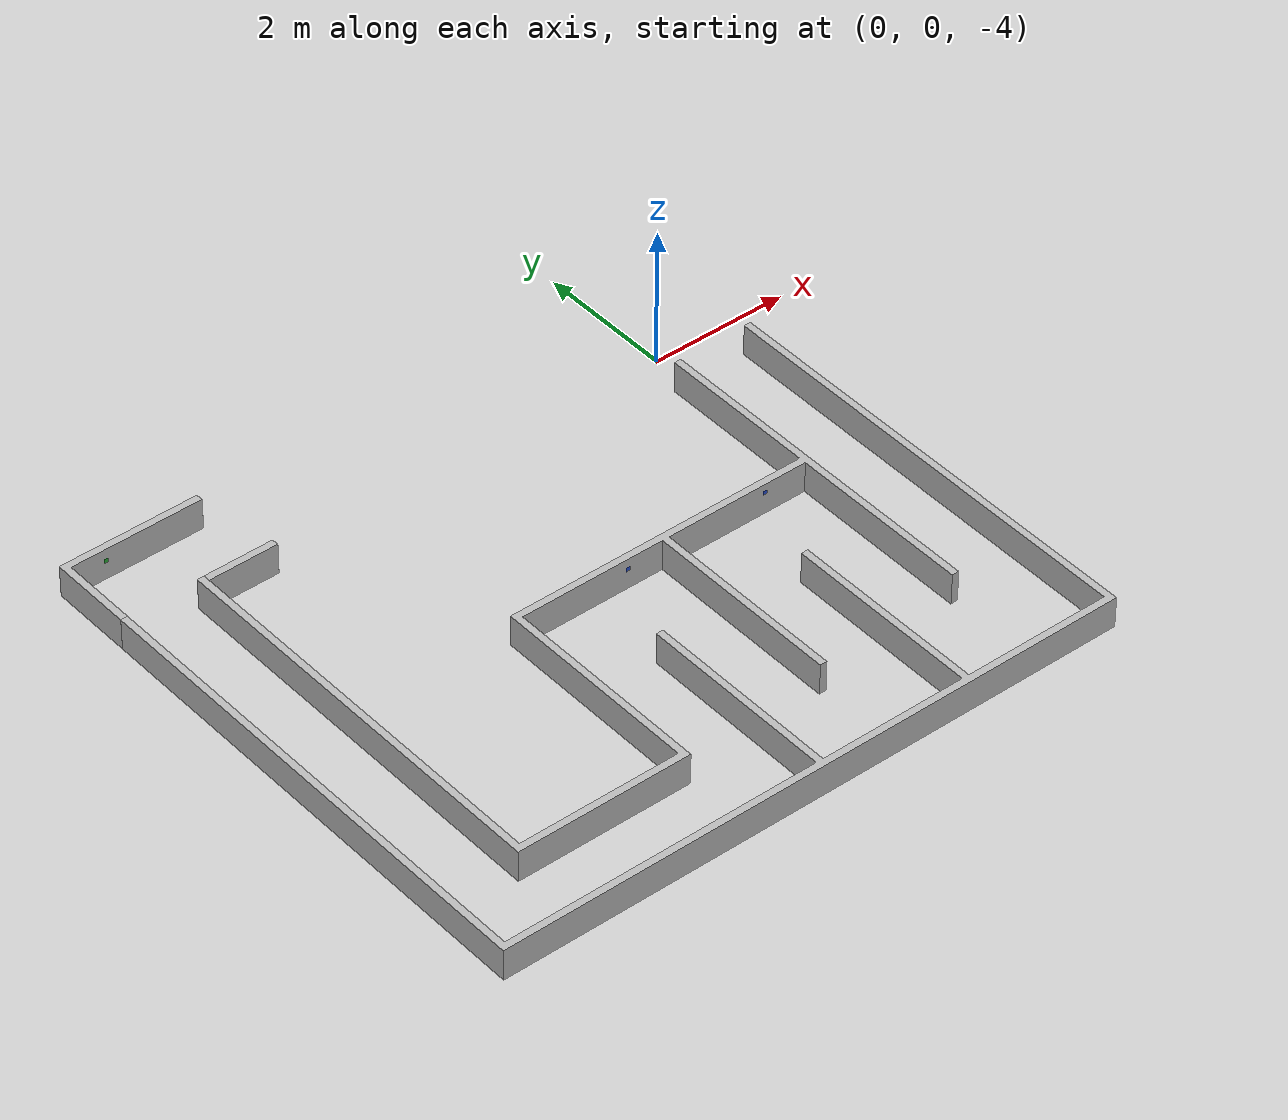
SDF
<?xml version="1.0"?>

<sdf version="1.6">
  <world name="default">

    <scene>
      <sky>
        <clouds>
          <speed>12</speed>
        </clouds>
      </sky>
    </scene>

    <include>
      <uri>model://ground_plane</uri>
    </include>

    <include>
      <uri>model://sun</uri>
    </include>

    <gui fullscreen='0'>
      <camera name='user_camera'>
        <pose frame=''>0.319654 -0.235002 9.29441 0 1.5138 0.009599</pose>
        <view_controller>orbit</view_controller>
        <projection_type>perspective</projection_type>
      </camera>
    </gui>

    <physics type="ode">
      <real_time_update_rate>1000.0</real_time_update_rate>
      <max_step_size>0.001</max_step_size>
      <real_time_factor>1</real_time_factor>
      <ode>
        <solver>
          <type>quick</type>
          <iters>150</iters>
          <precon_iters>0</precon_iters>
          <sor>1.400000</sor>
          <use_dynamic_moi_rescaling>1</use_dynamic_moi_rescaling>
        </solver>
        <constraints>
          <cfm>0.00001</cfm>
          <erp>0.2</erp>
          <contact_max_correcting_vel>2000.000000</contact_max_correcting_vel>
          <contact_surface_layer>0.01000</contact_surface_layer>
        </constraints>
      </ode>
    </physics>

  <model name='worldv2'>
    <pose>0.1 -5 0 0 0 1.57</pose>
    <link name='base_link'>
      <inertial>
        <pose>0.467407 4.2841 -3.26331 0 -0 0</pose>
        <mass>2497.5</mass>
        <inertia>
          <ixx>25124</ixx>
          <ixy>-3259.73</ixy>
          <ixz>-0.00571683</ixz>
          <iyy>12124.3</iyy>
          <iyz>-0.00487736</iyz>
          <izz>37164</izz>
        </inertia>
      </inertial>
      <collision name='base_link_collision'>
        <pose>0 0 0 0 -0 0</pose>
        <geometry>
          <mesh>
            <scale>1 1 1</scale>
            <uri>model://myrobot/meshes/worldv2.STL</uri>
          </mesh>
        </geometry>
      </collision>
      <collision name='base_link_fixed_joint_lump__cp10_r_collision_1'>
        <pose>-2.0208 8.4975 -3.1826 0 -0 0</pose>
        <geometry>
          <mesh>
            <scale>1 1 1</scale>
            <uri>model://myrobot/meshes/cp1__.STL</uri>
          </mesh>
        </geometry>
      </collision>
      <collision name='base_link_fixed_joint_lump__cp11_g_collision_2'>
        <pose>5.5761 7.9975 -3.2136 0 -0 1.5708</pose>
        <geometry>
          <mesh>
            <scale>1 1 1</scale>
            <uri>model://myrobot/meshes/cp1__.STL</uri>
          </mesh>
        </geometry>
      </collision>
      <collision name='base_link_fixed_joint_lump__cp1_r_collision_3'>
        <pose>-2.4269 0.077522 -3.1683 0 -0 1.5708</pose>
        <geometry>
          <mesh>
            <scale>1 1 1</scale>
            <uri>model://myrobot/meshes/cp1__.STL</uri>
          </mesh>
        </geometry>
      </collision>
      <collision name='base_link_fixed_joint_lump__cp2_r_collision_4'>
        <pose>-1.8719 1.6975 -3.1683 0 -0 0</pose>
        <geometry>
          <mesh>
            <scale>1 1 1</scale>
            <uri>model://myrobot/meshes/cp1__.STL</uri>
          </mesh>
        </geometry>
      </collision>
      <collision name='base_link_fixed_joint_lump__cp3_b_collision_5'>
        <pose>1.5761 1.3175 -3.1683 0 -0 1.5708</pose>
        <geometry>
          <mesh>
            <scale>1 1 1</scale>
            <uri>model://myrobot/meshes/cp1__.STL</uri>
          </mesh>
        </geometry>
      </collision>
      <collision name='base_link_fixed_joint_lump__cp4_b_collision_6'>
        <pose>1.1781 2.7975 -3.1933 0 -0 0</pose>
        <geometry>
          <mesh>
            <scale>1 1 1</scale>
            <uri>model://myrobot/meshes/cp1__.STL</uri>
          </mesh>
        </geometry>
      </collision>
      <collision name='base_link_fixed_joint_lump__cp5_r_collision_7'>
        <pose>-2.4269 2.2525 -3.1933 0 -0 1.5708</pose>
        <geometry>
          <mesh>
            <scale>1 1 1</scale>
            <uri>model://myrobot/meshes/cp1__.STL</uri>
          </mesh>
        </geometry>
      </collision>
      <collision name='base_link_fixed_joint_lump__cp6_r_collision_8'>
        <pose>-1.9969 3.8975 -3.1683 0 -0 0</pose>
        <geometry>
          <mesh>
            <scale>1 1 1</scale>
            <uri>model://myrobot/meshes/cp1__.STL</uri>
          </mesh>
        </geometry>
      </collision>
      <collision name='base_link_fixed_joint_lump__cp7_b_collision_9'>
        <pose>1.5761 3.4175 -3.1933 0 -0 1.5708</pose>
        <geometry>
          <mesh>
            <scale>1 1 1</scale>
            <uri>model://myrobot/meshes/cp1__.STL</uri>
          </mesh>
        </geometry>
      </collision>
      <collision name='base_link_fixed_joint_lump__cp8_b_collision_10'>
        <pose>1.1281 4.9965 -3.1683 0 -0 0</pose>
        <geometry>
          <mesh>
            <scale>1 1 1</scale>
            <uri>model://myrobot/meshes/cp1__.STL</uri>
          </mesh>
        </geometry>
      </collision>
      <collision name='base_link_fixed_joint_lump__cp9_r_collision_11'>
        <pose>-2.4299 4.3775 -3.1683 0 0 -1.5708</pose>
        <geometry>
          <mesh>
            <scale>1 1 1</scale>
            <uri>model://myrobot/meshes/cp1__.STL</uri>
          </mesh>
        </geometry>
      </collision>
      <collision name='base_link_fixed_joint_lump__w1_collision_12'>
        <pose>4.4231 6.8975 -3.0383 -1.5708 0 0</pose>
        <geometry>
          <mesh>
            <scale>1 1 1</scale>
            <uri>model://myrobot/meshes/w1.STL</uri>
          </mesh>
        </geometry>
      </collision>
      <collision name='base_link_fixed_joint_lump__w2_collision_13'>
        <pose>5.0231 8.5475 -3.4883 0 -0 0</pose>
        <geometry>
          <mesh>
            <scale>1 1 1</scale>
            <uri>model://myrobot/meshes/w2.STL</uri>
          </mesh>
        </geometry>
      </collision>
      <visual name='base_link_visual'>
        <pose>0 0 0 0 -0 0</pose>
        <geometry>
          <mesh>
            <scale>1 1 1</scale>
            <uri>model://myrobot/meshes/worldv2.STL</uri>
          </mesh>
        </geometry>
      </visual>
      <visual name='base_link_fixed_joint_lump__cp10_r_visual_1'>
        <pose>-2.0208 8.4975 -3.1826 0 -0 0</pose>
        <geometry>
          <mesh>
            <scale>1 1 1</scale>
            <uri>model://myrobot/meshes/cp1__.STL</uri>
          </mesh>
        </geometry>
              <material>
          <script>
            <uri>file://media/materials/scripts/gazebo.material</uri>
            <name>Gazebo/Red</name>
          </script>
        </material>
      </visual>
      <visual name='base_link_fixed_joint_lump__cp11_g_visual_2'>
        <pose>5.5761 7.9975 -3.2136 0 -0 1.5708</pose>
        <geometry>
          <mesh>
            <scale>1 1 1</scale>
            <uri>model://myrobot/meshes/cp1__.STL</uri>
          </mesh>
        </geometry>
              <material>
          <script>
            <uri>file://media/materials/scripts/gazebo.material</uri>
            <name>Gazebo/Green</name>
          </script>
        </material>
      </visual>
      <visual name='base_link_fixed_joint_lump__cp1_r_visual_3'>
        <pose>-2.4269 0.077522 -3.1683 0 -0 1.5708</pose>
        <geometry>
          <mesh>
            <scale>1 1 1</scale>
            <uri>model://myrobot/meshes/cp1__.STL</uri>
          </mesh>
        </geometry>
              <material>
          <script>
            <uri>file://media/materials/scripts/gazebo.material</uri>
            <name>Gazebo/Red</name>
          </script>
        </material>
      </visual>
      <visual name='base_link_fixed_joint_lump__cp2_r_visual_4'>
        <pose>-1.8719 1.6975 -3.1683 0 -0 0</pose>
        <geometry>
          <mesh>
            <scale>1 1 1</scale>
            <uri>model://myrobot/meshes/cp1__.STL</uri>
          </mesh>
        </geometry>
              <material>
          <script>
            <uri>file://media/materials/scripts/gazebo.material</uri>
            <name>Gazebo/Red</name>
          </script>
        </material>
      </visual>
      <visual name='base_link_fixed_joint_lump__cp3_b_visual_5'>
        <pose>1.5761 1.3175 -3.1683 0 -0 1.5708</pose>
        <geometry>
          <mesh>
            <scale>1 1 1</scale>
            <uri>model://myrobot/meshes/cp1__.STL</uri>
          </mesh>
        </geometry>
              <material>
          <script>
            <uri>file://media/materials/scripts/gazebo.material</uri>
            <name>Gazebo/Blue</name>
          </script>
        </material>
      </visual>
      <visual name='base_link_fixed_joint_lump__cp4_b_visual_6'>
        <pose>1.1781 2.7975 -3.1933 0 -0 0</pose>
        <geometry>
          <mesh>
            <scale>1 1 1</scale>
            <uri>model://myrobot/meshes/cp1__.STL</uri>
          </mesh>
        </geometry>
              <material>
          <script>
            <uri>file://media/materials/scripts/gazebo.material</uri>
            <name>Gazebo/Blue</name>
          </script>
        </material>
      </visual>
      <visual name='base_link_fixed_joint_lump__cp5_r_visual_7'>
        <pose>-2.4269 2.2525 -3.1933 0 -0 1.5708</pose>
        <geometry>
          <mesh>
            <scale>1 1 1</scale>
            <uri>model://myrobot/meshes/cp1__.STL</uri>
          </mesh>
        </geometry>
              <material>
          <script>
            <uri>file://media/materials/scripts/gazebo.material</uri>
            <name>Gazebo/Red</name>
          </script>
        </material>
      </visual>
      <visual name='base_link_fixed_joint_lump__cp6_r_visual_8'>
        <pose>-1.9969 3.8975 -3.1683 0 -0 0</pose>
        <geometry>
          <mesh>
            <scale>1 1 1</scale>
            <uri>model://myrobot/meshes/cp1__.STL</uri>
          </mesh>
        </geometry>
              <material>
          <script>
            <uri>file://media/materials/scripts/gazebo.material</uri>
            <name>Gazebo/Red</name>
          </script>
        </material>
      </visual>
      <visual name='base_link_fixed_joint_lump__cp7_b_visual_9'>
        <pose>1.5761 3.4175 -3.1933 0 -0 1.5708</pose>
        <geometry>
          <mesh>
            <scale>1 1 1</scale>
            <uri>model://myrobot/meshes/cp1__.STL</uri>
          </mesh>
        </geometry>
              <material>
          <script>
            <uri>file://media/materials/scripts/gazebo.material</uri>
            <name>Gazebo/Blue</name>
          </script>
        </material>
      </visual>
      <visual name='base_link_fixed_joint_lump__cp8_b_visual_10'>
        <pose>1.1281 4.9965 -3.1683 0 -0 0</pose>
        <geometry>
          <mesh>
            <scale>1 1 1</scale>
            <uri>model://myrobot/meshes/cp1__.STL</uri>
          </mesh>
        </geometry>
              <material>
          <script>
            <uri>file://media/materials/scripts/gazebo.material</uri>
            <name>Gazebo/Blue</name>
          </script>
        </material>
      </visual>
      <visual name='base_link_fixed_joint_lump__cp9_r_visual_11'>
        <pose>-2.4299 4.3775 -3.1683 0 0 -1.5708</pose>
        <geometry>
          <mesh>
            <scale>1 1 1</scale>
            <uri>model://myrobot/meshes/cp1__.STL</uri>
          </mesh>
        </geometry>
              <material>
          <script>
            <uri>file://media/materials/scripts/gazebo.material</uri>
            <name>Gazebo/Red</name>
          </script>
        </material>
      </visual>
      <visual name='base_link_fixed_joint_lump__w1_visual_12'>
        <pose>4.4231 6.8975 -3.0383 -1.5708 0 0</pose>
        <geometry>
          <mesh>
            <scale>1 1 1</scale>
            <uri>model://myrobot/meshes/w1.STL</uri>
          </mesh>
        </geometry>
      </visual>
      <visual name='base_link_fixed_joint_lump__w2_visual_13'>
        <pose>5.0231 8.5475 -3.4883 0 -0 0</pose>
        <geometry>
          <mesh>
            <scale>1 1 1</scale>
            <uri>model://myrobot/meshes/w2.STL</uri>
          </mesh>
        </geometry>
      </visual>
    </link>
  </model>

  </world>
</sdf>
